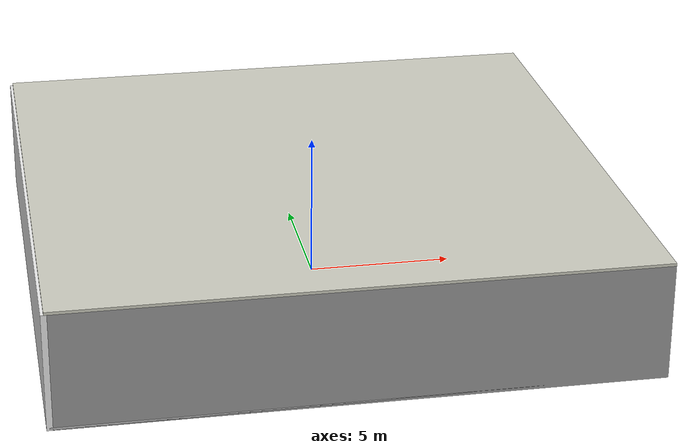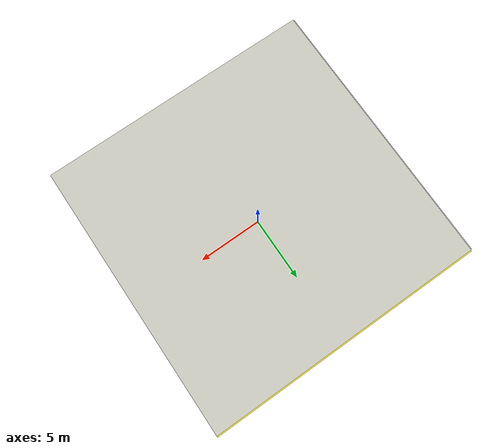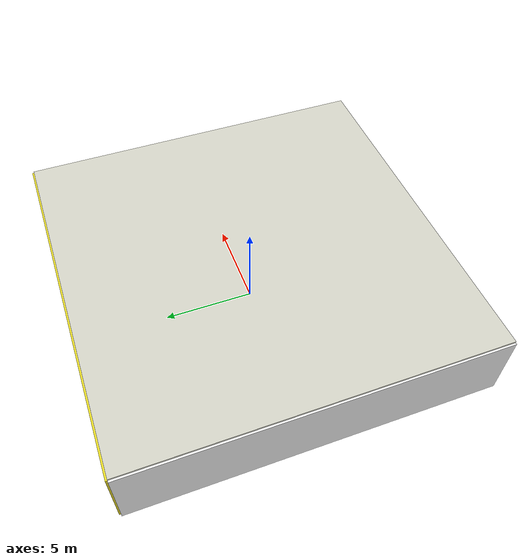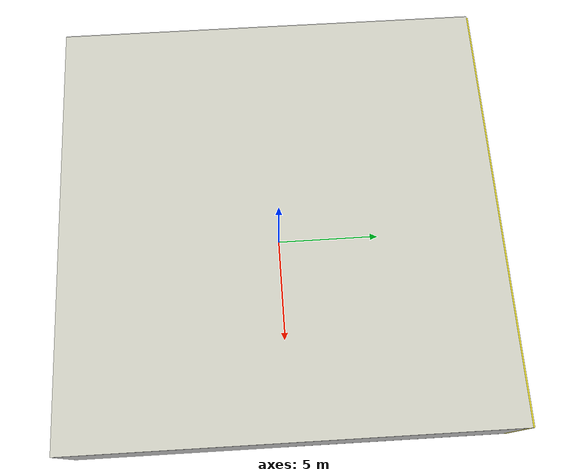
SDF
<sdf version="1.4">
 <world name="default">
  <physics type="ode">
   <max_step_size>0.001</max_step_size>
   <real_time_factor>1</real_time_factor>
   <real_time_update_rate>1000</real_time_update_rate>
   <gravity>0 0 -9.8</gravity>
  </physics>
  <scene><ambient>0.4 0.4 0.4 1</ambient><background>0.7 0.7 0.7 1</background><shadows>1</shadows></scene>
  <model name="Surrounding">
   <static>1</static>
   <link name="Ceiling">
    <collision name="Ceiling_Collision"><geometry><box><size>20 20 0.1</size></box></geometry></collision>
    <visual name="Ceiling_Visual">
     <geometry><box><size>20 20 0.1</size></box></geometry>
     <material>
      <script><uri>file://media/materials/scripts/gazebo.material</uri><name>Gazebo/PaintedWall</name></script>
     </material>
    </visual>
    <pose>0 0 4.05 0 0 0</pose>
   </link>
   <link name="Wall_South">
    <collision name="Wall_South_Collision">
     <geometry><box><size>20 0 4</size></box></geometry>
     <pose>0 0 2 0 -0 0</pose>
    </collision>
    <visual name="Wall_South_Visual">
     <pose>0 0 2 0 -0 0</pose>
     <geometry><box><size>20 0 4</size></box></geometry>
     <material>
      <script><uri>file://media/materials/scripts/gazebo.material</uri><name>Gazebo/GreyGradientSky</name></script>
     </material>
    </visual>
    <velocity_decay><linear>0</linear><angular>0</angular></velocity_decay>
    <pose>0 -10 0 0 -0 0</pose>
   </link>
   <link name="Wall_East">
    <collision name="Wall_21_Collision">
     <geometry><box><size>20 0 4</size></box></geometry>
     <pose>0 0 2 0 -0 0</pose>
    </collision>
    <visual name="Wall_21_Visual">
     <pose>0 0 2 0 -0 0</pose>
     <geometry><box><size>20 0 4</size></box></geometry>
     <material>
      <script><uri>file://media/materials/scripts/gazebo.material</uri><name>Gazebo/Pioneer2Body</name></script>
     </material>
    </visual>
    <velocity_decay><linear>0</linear><angular>0</angular></velocity_decay>
    <pose>10 0 0 0 -0 1.5708</pose>
   </link>
   <link name="Wall_North">
    <collision name="Wall_22_Collision">
     <geometry><box><size>20 0.2 4</size></box></geometry>
     <pose>0 0 2 0 -0 0</pose>
    </collision>
    <visual name="Wall_22_Visual">
     <pose>0 0 2 0 -0 0</pose>
     <geometry><box><size>20 0.2 4</size></box></geometry>
     <material>
      <script><uri>file://media/materials/scripts/gazebo.material</uri><name>Gazebo/YellowGlow</name></script>
     </material>
    </visual>
    <velocity_decay><linear>0</linear><angular>0</angular></velocity_decay>
    <pose>0 10 0 0 -0 0</pose>
   </link>
   <link name="Wall_West">
    <collision name="Wall_23_Collision">
     <geometry><box><size>20 0.2 4</size></box></geometry>
     <pose>0 0 2 0 -0 0</pose>
    </collision>
    <visual name="Wall_23_Visual">
     <pose>0 0 2 0 -0 0</pose>
     <geometry><box><size>20 0.2 4</size></box></geometry>
     <material>
      <script><uri>file://media/materials/scripts/gazebo.material</uri><name>Gazebo/White</name></script>
     </material>
    </visual>
    <velocity_decay><linear>0</linear><angular>0</angular></velocity_decay>
    <pose>-10 0 0 0 0 -1.5708</pose>
   </link>
   <link name="Ground_link">
    <collision name="collision">
     <pose>0 0 .05 0 -0 0</pose>
     <geometry><box><size>20 20 0.1</size></box></geometry>
    </collision>
    <visual name="visual">
     <pose>0 0 .05 0 -0 0</pose>
     <geometry><box><size>20 20 0.1</size></box></geometry>
     <material>
      <script><uri>file://media/materials/scripts/gazebo.material</uri><name>Gazebo/JointAnchor</name></script>
     </material>
    </visual>
   </link>
   <static>1</static>
  </model>
  <spherical_coordinates>
   <surface_model>EARTH_WGS84</surface_model>
   <latitude_deg>0</latitude_deg>
   <longitude_deg>0</longitude_deg>
   <elevation>0</elevation>
   <heading_deg>0</heading_deg>
  </spherical_coordinates>
  <light name="lightball_0" type="diffuse">
   <diffuse>0.8 0.8 0.8 1</diffuse>
   <specular>0.2 0.2 0.2 1</specular>
   <attenuation>
    <range>100</range>
    <constant>0.7</constant>
    <linear>0.01</linear>
    <quadratic>0.001</quadratic>
   </attenuation>
   <direction>-0.5 0.1 -0.9</direction>
   <pose>-9.45249790733 -9.79010967838 1.51520077215 0 0 0</pose>
  </light>
  <light name="lightball_1" type="diffuse">
   <diffuse>0.8 0.8 0.8 1</diffuse>
   <specular>0.2 0.2 0.2 1</specular>
   <attenuation>
    <range>100</range>
    <constant>0.7</constant>
    <linear>0.01</linear>
    <quadratic>0.001</quadratic>
   </attenuation>
   <direction>-0.5 0.1 -0.9</direction>
   <pose>1.76107130604 -9.67546176776 3.21392709072 0 0 0</pose>
  </light>
  <light name="lightball_2" type="diffuse">
   <diffuse>0.8 0.8 0.8 1</diffuse>
   <specular>0.2 0.2 0.2 1</specular>
   <attenuation>
    <range>100</range>
    <constant>0.7</constant>
    <linear>0.01</linear>
    <quadratic>0.001</quadratic>
   </attenuation>
   <direction>-0.5 0.1 -0.9</direction>
   <pose>-2.80213637731 -8.83218603248 2.9617081307 0 0 0</pose>
  </light>
  <include><uri>model://table</uri><pose>0.310634406567 -1.91246874831 0 0 0 1.43542835752</pose></include>
  <include>
   <uri>model://textured_shapes</uri>
   <pose>5.53941831803 1.86932898401 0 0 0 1.18636247921</pose>
  </include>
 </world>
</sdf>

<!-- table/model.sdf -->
<sdf version="1.5">
  <model name="table">
    <static>true</static>
    <link name="link">
      <collision name="surface">
        <pose>0 0 1.0 0 0 0</pose>
        <geometry>
          <box>
            <size>1.5 0.8 0.03</size>
          </box>
        </geometry>
        <surface>
          <friction>
            <ode>
              <mu>0.6</mu>
              <mu2>0.6</mu2>
            </ode>
          </friction>
        </surface>
      </collision>
      <visual name="visual1">
        <pose>0 0 1.0 0 0 0</pose>
        <geometry>
          <box>
            <size>1.5 0.8 0.03</size>
          </box>
        </geometry>
        <material>
          <script>
            <uri>model://media/materials/scripts/gazebo.material</uri>
            <name>Gazebo/Wood</name>
          </script>
        </material>
      </visual>
      <collision name="front_left_leg">
        <pose>0.68 0.38 0.5 0 0 0</pose>
        <geometry>
          <cylinder>
            <radius>0.02</radius>
            <length>1.0</length>
          </cylinder>
        </geometry>
      </collision>
      <visual name="front_left_leg">
        <pose>0.68 0.38 0.5 0 0 0</pose>
        <geometry>
          <cylinder>
            <radius>0.02</radius>
            <length>1.0</length>
          </cylinder>
        </geometry>
        <material>
          <script>
            <uri>model://media/materials/scripts/gazebo.material</uri>
            <name>Gazebo/Grey</name>
          </script>
        </material>
      </visual>
      <collision name="front_right_leg">
        <pose>0.68 -0.38 0.5 0 0 0</pose>
        <geometry>
          <cylinder>
            <radius>0.02</radius>
            <length>1.0</length>
          </cylinder>
        </geometry>
      </collision>
      <visual name="front_right_leg">
        <pose>0.68 -0.38 0.5 0 0 0</pose>
        <geometry>
          <cylinder>
            <radius>0.02</radius>
            <length>1.0</length>
          </cylinder>
        </geometry>
        <material>
          <script>
            <uri>model://media/materials/scripts/gazebo.material</uri>
            <name>Gazebo/Grey</name>
          </script>
        </material>
      </visual>
      <collision name="back_right_leg">
        <pose>-0.68 -0.38 0.5 0 0 0</pose>
        <geometry>
          <cylinder>
            <radius>0.02</radius>
            <length>1.0</length>
          </cylinder>
        </geometry>
      </collision>
      <visual name="back_right_leg">
        <pose>-0.68 -0.38 0.5 0 0 0</pose>
        <geometry>
          <cylinder>
            <radius>0.02</radius>
            <length>1.0</length>
          </cylinder>
        </geometry>
        <material>
          <script>
            <uri>model://media/materials/scripts/gazebo.material</uri>
            <name>Gazebo/Grey</name>
          </script>
        </material>
      </visual>
      <collision name="back_left_leg">
        <pose>-0.68 0.38 0.5 0 0 0</pose>
        <geometry>
          <cylinder>
            <radius>0.02</radius>
            <length>1.0</length>
          </cylinder>
        </geometry>
      </collision>
      <visual name="back_left_leg">
        <pose>-0.68 0.38 0.5 0 0 0</pose>
        <geometry>
          <cylinder>
            <radius>0.02</radius>
            <length>1.0</length>
          </cylinder>
        </geometry>
        <material>
          <script>
            <uri>model://media/materials/scripts/gazebo.material</uri>
            <name>Gazebo/Grey</name>
          </script>
        </material>
      </visual>
    </link>
  </model>
</sdf>

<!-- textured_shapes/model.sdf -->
<sdf version="1.6">
  <model name="textured_shapes">
    <pose>0 0 0.5 0 0 0</pose>
    <link name="box">
      <pose>0 -1.5 0 0 0 0</pose>
      <collision name="collision">
        <geometry>
          <box>
            <size>1 1 1</size>
          </box>
        </geometry>
      </collision>
      <visual name="visual">
        <geometry>
          <box>
            <size>1 1 1</size>
          </box>
        </geometry>
        <material>
          <script>
            <uri>model://../model_source/models/textured_shapes/materials/scripts</uri>
            <uri>model://../model_source/models/textured_shapes/materials/textures</uri>
            <name>TexturedShape/Squares</name>
          </script>
        </material>
      </visual>
    </link>
    <link name="sphere">
      <collision name="collision">
        <geometry>
          <sphere>
            <radius>0.5</radius>
          </sphere>
        </geometry>
      </collision>
      <visual name="visual">
        <geometry>
          <sphere>
            <radius>0.5</radius>
          </sphere>
        </geometry>
        <material>
          <script>
            <uri>model://../model_source/models/textured_shapes/materials/scripts</uri>
            <uri>model://../model_source/models/textured_shapes/materials/textures</uri>
            <name>TexturedShape/Squares</name>
          </script>
        </material>
      </visual>
    </link>
    <link name="cylinder">
      <pose>0 1.5 0 0 0 0</pose>
      <collision name="collision">
        <geometry>
          <cylinder>
            <radius>0.5</radius>
            <length>1</length>
          </cylinder>
        </geometry>
      </collision>
      <visual name="visual">
        <geometry>
          <cylinder>
            <radius>0.5</radius>
            <length>1</length>
          </cylinder>
        </geometry>
        <material>
          <script>
            <uri>model://../model_source/models/textured_shapes/materials/scripts</uri>
            <uri>model://../model_source/models/textured_shapes/materials/textures</uri>
            <name>TexturedShape/Squares</name>
          </script>
        </material>
      </visual>
    </link>
  </model>
</sdf>
